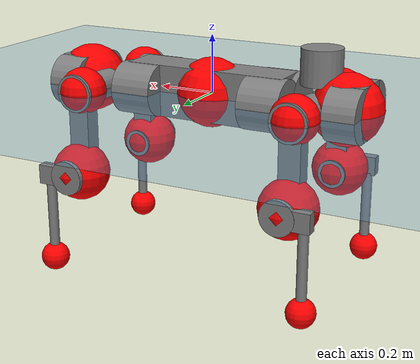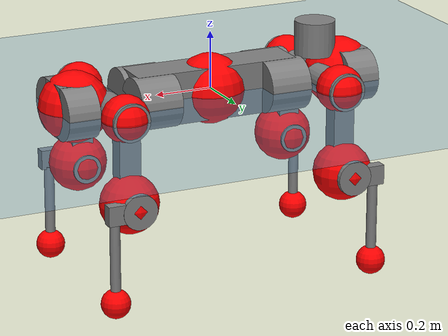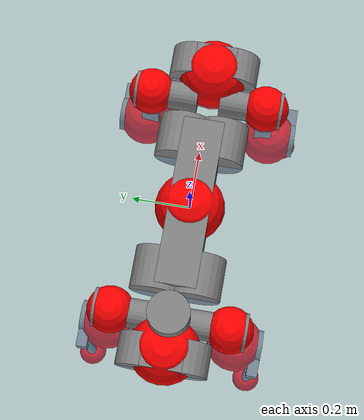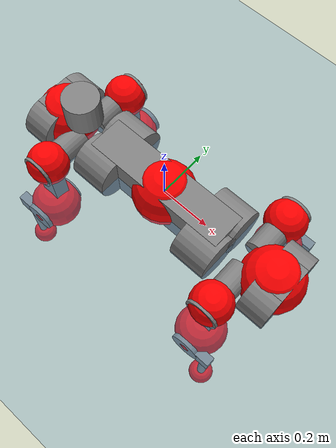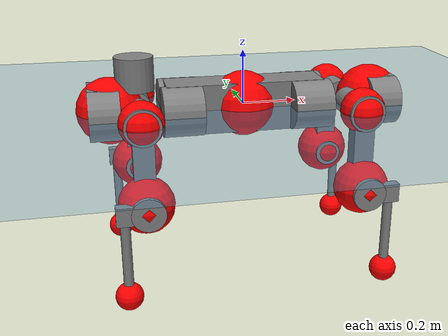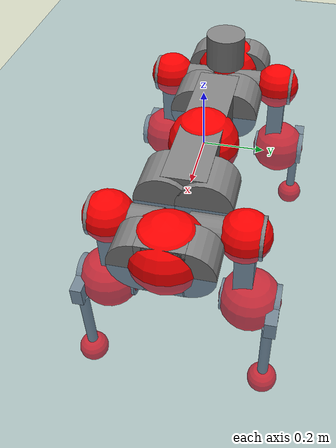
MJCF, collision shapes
<mujoco model="anymal_c">
  <compiler angle="radian" assetdir="assets" balanceinertia="true" inertiafromgeom="false"/>

  <option timestep="0.005" density="1.2" viscosity="2e-05"/>

  <size nkey="1"/>

  <visual>
    <quality shadowsize="8192"/>
    <map shadowclip="0.5"/>
  </visual>

  <default>
    <default class="/">
      <material specular="0" shininess="0.25"/>
      <geom contype="0" conaffinity="0" group="1" solref="-1000 -80"/>
      <site size="0.01 0.005 0.005" group="5"/>
      <general forcelimited="true" forcerange="-80 80" biastype="affine" gainprm="80" biasprm="0 -80 -2"/>
      <default class="anymal_c">
        <joint armature="0.01" damping="0.01" frictionloss="0.1"/>
        <default class="visual">
          <geom type="mesh" group="2"/>
          <default class="visual_zflip"/>
        </default>
        <default class="collision">
          <geom type="cylinder" group="3"/>
          <default class="foot">
            <geom size="0.03 0 0" type="sphere" condim="6" priority="1" friction="0.8 0.02 0.01" solimp="0.015 1 0.03"/>
          </default>
        </default>
      </default>
      <default class="reward_collision_sphere">
        <geom group="5" rgba="1 0 0 1"/>
      </default>
    </default>
  </default>

  <asset>
    <texture type="skybox" colorspace="auto" name="//unnamed_texture_0" builtin="gradient" rgb1="0.95 0.95 0.95" rgb2="0.95 0.95 0.95" width="100" height="600"/>
    <texture type="2d" colorspace="auto" name="texplane" builtin="checker" rgb1="0.345 0.575 0.748" rgb2="0.345 0.575 0.748" markrgb="1 1 1" width="512" height="512"/>
    <texture type="2d" colorspace="linear" name="base" file="base.png"/>
    <texture type="2d" colorspace="linear" name="top_shell" file="top_shell.png"/>
    <texture type="2d" colorspace="linear" name="bottom_shell" file="bottom_shell.png"/>
    <texture type="2d" colorspace="linear" name="remote" file="remote.png"/>
    <texture type="2d" colorspace="linear" name="hatch" file="hatch.png"/>
    <texture type="2d" colorspace="linear" name="handle" file="handle.png"/>
    <texture type="2d" colorspace="linear" name="face" file="face.png"/>
    <texture type="2d" colorspace="linear" name="battery" file="battery.png"/>
    <texture type="2d" colorspace="linear" name="lidar_cage" file="lidar_cage.png"/>
    <texture type="2d" colorspace="linear" name="depth_camera" file="depth_camera.png"/>
    <texture type="2d" colorspace="linear" name="wide_angle_camera" file="wide_angle_camera.png"/>
    <texture type="2d" colorspace="linear" name="lidar" file="lidar.png"/>
    <texture type="2d" colorspace="linear" name="drive" file="drive.png"/>
    <texture type="2d" colorspace="linear" name="hip_l" file="hip_l.png"/>
    <texture type="2d" colorspace="linear" name="shank_l" file="shank_l.png"/>
    <texture type="2d" colorspace="linear" name="foot" file="foot.png"/>
    <texture type="2d" colorspace="linear" name="thigh" file="thigh.png"/>
    <texture type="2d" colorspace="linear" name="shank_r" file="shank_r.png"/>
    <texture type="2d" colorspace="linear" name="hip_r" file="hip_r.png"/>
    <material name="MatPlane" class="/" texture="texplane" texuniform="true" texrepeat="2 2" specular="0.9" shininess="0.5"/>
    <material name="black_plastic" class="/" rgba="0.007 0.007 0.007 1"/>
    <material name="green" class="/" rgba="0.052 0.178 0.033 1"/>
    <material name="red" class="/" rgba="0.178 0.006 0.005 1"/>
    <material name="yellow" class="/" rgba="0.178 0.119 0.006 1"/>
    <material name="lwl" class="/" rgba="0.8 0.8 0.8 1"/>
    <material name="base" class="/" texture="base"/>
    <material name="top_shell" class="/" texture="top_shell"/>
    <material name="bottom_shell" class="/" texture="bottom_shell"/>
    <material name="hip_l" class="/" texture="hip_l"/>
    <material name="thigh" class="/" texture="thigh"/>
    <material name="shank_l" class="/" texture="shank_l"/>
    <material name="foot" class="/" texture="foot"/>
    <material name="hip_r" class="/" texture="hip_r"/>
    <material name="shank" class="/" texture="shank_r"/>
    <material name="hatch" class="/" texture="hatch"/>
    <material name="remote" class="/" texture="remote"/>
    <material name="handle" class="/" texture="handle"/>
    <material name="face" class="/" texture="face"/>
    <material name="depth_camera" class="/" texture="depth_camera"/>
    <material name="wide_angle_camera" class="/" texture="wide_angle_camera"/>
    <material name="battery" class="/" texture="battery"/>
    <material name="lidar_cage" class="/" texture="lidar_cage"/>
    <material name="lidar" class="/" texture="lidar"/>
    <material name="drive" class="/" texture="drive"/>
    <mesh name="base_0" class="/" file="base_0.obj"/>
    <mesh name="base_1" class="/" file="base_1.obj"/>
    <mesh name="base_2" class="/" file="base_2.obj"/>
    <mesh name="base_3" class="/" file="base_3.obj"/>
    <mesh name="base_4" class="/" file="base_4.obj"/>
    <mesh name="base_5" class="/" file="base_5.obj"/>
    <mesh name="top_shell" class="/" file="top_shell.obj"/>
    <mesh name="bottom_shell" class="/" file="bottom_shell.obj"/>
    <mesh name="remote" class="/" file="remote.obj"/>
    <mesh name="handle" class="/" file="handle.obj"/>
    <mesh name="face" class="/" file="face.obj"/>
    <mesh name="wide_angle_camera" class="/" file="wide_angle_camera.obj"/>
    <mesh name="depth_camera" class="/" file="depth_camera.obj"/>
    <mesh name="battery" class="/" file="battery.obj"/>
    <mesh name="lidar_cage" class="/" file="lidar_cage.obj"/>
    <mesh name="lidar" class="/" file="lidar.obj"/>
    <mesh name="drive" class="/" file="drive.obj"/>
    <mesh name="hip_l" class="/" file="hip_l.obj"/>
    <mesh name="thigh" class="/" file="thigh.obj"/>
    <mesh name="shank_l" class="/" file="shank_l.obj"/>
    <mesh name="foot" class="/" file="foot.obj"/>
    <mesh name="hip_r" class="/" file="hip_r.obj"/>
    <mesh name="hatch" class="/" file="hatch.obj"/>
    <mesh name="shank_r" class="/" file="shank_r.obj"/>
  </asset>

  <worldbody>
    <geom name="floor" class="/" size="100 100 0.125" type="plane" group="0" material="MatPlane"/>
    <light name="toplight_shadow" class="/" pos="0 0 5" dir="0.0990148 0.0990148 -0.990148" type="directional" ambient="0.04 0.04 0.04" diffuse="0.55 0.55 0.55" specular="0.12 0.12 0.12"/>
    <light name="toplight_fill" class="/" pos="0 0 5" dir="0.0990148 0.0990148 -0.990148" type="directional" castshadow="false" ambient="0.04 0.04 0.04" diffuse="0.3 0.3 0.3" specular="0.08 0.08 0.08"/>
    <body name="trunk" childclass="anymal_c" pos="0.0021052 -0.000317811 0.000862991" quat="1 0.000490193 -0.000438016 -0.000536674">
      <inertial pos="0.000574737 -0.000914856 0.0496501" quat="0.500049 0.50042 0.499543 0.499987" mass="18.8898" diaginertia="1.00948 0.421418 0.210956"/>
      <joint name="//unnamed_joint_0" type="free" armature="0" damping="0" frictionloss="0"/>
      <geom name="//unnamed_geom_1" class="visual" material="green" mesh="base_0"/>
      <geom name="//unnamed_geom_2" class="visual" material="yellow" mesh="base_1"/>
      <geom name="//unnamed_geom_3" class="visual" material="red" mesh="base_2"/>
      <geom name="//unnamed_geom_4" class="visual" material="black_plastic" mesh="base_3"/>
      <geom name="//unnamed_geom_5" class="visual" material="lwl" mesh="base_4"/>
      <geom name="//unnamed_geom_6" class="visual" material="base" mesh="base_5"/>
      <geom name="trunk_1" class="collision" size="0.291857 0.0704483 0.0905764" type="box"/>
      <geom name="trunk_2" class="collision" size="0.0905764 0.0729643" pos="0.238471 0.0647878 0" quat="0.707107 0 0.707107 0"/>
      <geom name="trunk_3" class="collision" size="0.0905764 0.0729643" pos="-0.238471 0.0647878 0" quat="0.707107 0 0.707107 0"/>
      <geom name="trunk_4" class="collision" size="0.0905764 0.0729643" pos="0.238471 -0.0647878 0" quat="0.707107 0 0.707107 0"/>
      <geom name="trunk_5" class="collision" size="0.0905764 0.0729643" pos="-0.238471 -0.0647878 0" quat="0.707107 0 0.707107 0"/>
      <geom name="//unnamed_geom_12" class="visual" material="top_shell" mesh="top_shell"/>
      <geom name="//unnamed_geom_13" class="visual" material="bottom_shell" mesh="bottom_shell"/>
      <geom name="//unnamed_geom_14" class="visual" material="remote" mesh="remote"/>
      <geom name="//unnamed_geom_15" class="visual" material="handle" mesh="handle"/>
      <geom name="//unnamed_geom_16" class="visual" pos="0.454466 0 0" quat="1 0 0 0" material="face" mesh="face"/>
      <geom name="trunk_6" class="collision" size="0.0553523 0.0704483 0.0905764" pos="0.514769 0 0" type="box"/>
      <geom name="//unnamed_geom_18" class="collision" size="0.0905764 0.0553523" pos="0.514769 0.0647878 0" quat="0.707107 0 0.707107 0"/>
      <geom name="//unnamed_geom_19" class="collision" size="0.0905764 0.0553523" pos="0.514769 -0.0647878 0" quat="0.707107 0 0.707107 0"/>
      <geom name="//unnamed_geom_20" class="visual" pos="0.506158 0 -0.0283661" quat="0.965926 0 0.258819 0" material="depth_camera" mesh="depth_camera"/>
      <geom name="//unnamed_geom_21" class="visual" pos="0.562463 0 0.0149289" material="wide_angle_camera" mesh="wide_angle_camera"/>
      <geom name="//unnamed_geom_22" class="visual_zflip" pos="-0.454466 0 0" quat="0 0 0 1" material="face" mesh="face"/>
      <geom name="trunk_7" class="collision" size="0.0553523 0.0704483 0.0905764" pos="-0.514769 0 0" quat="0 0 0 1" type="box"/>
      <geom name="//unnamed_geom_24" class="collision" size="0.0905764 0.0553523" pos="-0.514769 -0.0647878 0" quat="0 -0.707107 0 0.707107"/>
      <geom name="//unnamed_geom_25" class="collision" size="0.0905764 0.0553523" pos="-0.514769 0.0647878 0" quat="0 -0.707107 0 0.707107"/>
      <geom name="//unnamed_geom_26" class="visual" pos="-0.506158 0 -0.0283661" quat="0 -0.258819 0 0.965926" material="depth_camera" mesh="depth_camera"/>
      <geom name="//unnamed_geom_27" class="visual_zflip" pos="-0.562463 0 0.0149289" quat="0 0 0 1" material="wide_angle_camera" mesh="wide_angle_camera"/>
      <geom name="//unnamed_geom_28" class="visual" material="battery" mesh="battery"/>
      <geom name="//unnamed_geom_29" class="visual" pos="0 0.0685204 0.0297239" quat="0.683013 -0.183013 0.183013 0.683013" material="depth_camera" mesh="depth_camera"/>
      <geom name="//unnamed_geom_30" class="visual" pos="0 -0.0685204 0.0297239" quat="0.683013 0.183013 0.183013 -0.683013" material="depth_camera" mesh="depth_camera"/>
      <geom name="//unnamed_geom_31" class="visual" pos="-0.399097 0 0.0732982" quat="1 0 0 0" material="lidar_cage" mesh="lidar_cage"/>
      <geom name="trunk_8" class="collision" size="0.0704483 0.0603843" pos="-0.399097 0 0.133133"/>
      <geom name="//unnamed_geom_33" class="visual" pos="-0.399097 -6.7134e-05 0.141809" quat="0.707107 0 0 -0.707107" material="lidar" mesh="lidar"/>
      <geom name="//unnamed_geom_34" class="visual" pos="0.328816 0.0962817 -1.23706e-09" quat="0.258819 0.965926 0 0" material="drive" mesh="drive"/>
      <geom name="//unnamed_geom_35" class="visual" pos="0.328816 -0.0962817 1.23706e-09" quat="0.258819 -0.965926 0 0" material="drive" mesh="drive"/>
      <geom name="//unnamed_geom_36" class="visual" pos="-0.328816 0.0962817 1.23706e-09" quat="0 0 0.965926 -0.258819" material="drive" mesh="drive"/>
      <geom name="//unnamed_geom_37" class="visual" pos="-0.328816 -0.0962817 -1.23706e-09" quat="0 0 -0.965926 -0.258819" material="drive" mesh="drive"/>
      <geom name="//unnamed_geom_38" class="visual" pos="0.127185 0 0.0727995" quat="1 0 0 0" material="hatch" mesh="hatch"/>
      <geom name="//unnamed_geom_39" class="reward_collision_sphere" size="0.120769"/>
      <geom name="//unnamed_geom_40" class="reward_collision_sphere" size="0.120769" pos="0.493389 0 0"/>
      <geom name="//unnamed_geom_41" class="reward_collision_sphere" size="0.120769" pos="-0.493389 0 0"/>
      <site name="imu" pos="0.270616 0.00480754 0.0538566" size="0.010064"/>
      <camera name="track" pos="0 -1.85108 0" quat="0.707107 0.707107 0 0" mode="trackcom"/>
      <camera name="ego_camera" pos="0.493389 0 -0.0398902" quat="-0.5 -0.5 0.5 0.5"/>
      <body name="LF_HIP" pos="0.329116 0.0966843 -0.000101365" quat="0.259086 0.965854 -0.000146245 -0.00038146">
        <inertial pos="0.0618004 -0.0142173 -0.00862553" quat="-0.128081 0.708756 -0.13762 0.679942" mass="2.85731" diaginertia="0.00950139 0.00330225 0.00323943"/>
        <joint name="LF_HAA" pos="0 0 0" axis="0.999917 -0.000434977 0.0128636" range="-0.679465 0.479588" armature="0.00992786" damping="0.00617843" frictionloss="0.100754"/>
        <geom name="//unnamed_geom_42" class="visual" pos="0 -7.27708e-05 1.19525e-05" quat="0.258819 -0.965926 0 0" material="hip_l" mesh="hip_l"/>
        <geom name="//unnamed_geom_43" class="visual" pos="0.0656756 -0.0773555 -0.0451917" quat="0.183013 -0.683013 0.683013 0.183013" material="drive" mesh="drive"/>
        <geom name="//unnamed_geom_44" class="collision" size="0.0503202 0.0704483" pos="0.0656756 -0.0110693 -0.00688604" quat="-0.353553 -0.612372 0.612372 -0.353553"/>
        <body name="LF_THIGH" pos="0.0652472 -0.0670597 -0.042745" quat="0.18354 -0.683011 0.682839 0.183137">
          <inertial pos="0.0344221 0.000225982 -0.246623" quat="0.993173 -0.00514398 -0.0803526 0.0844085" mass="3.10299" diaginertia="0.0471809 0.0202763 0.00421644"/>
          <joint name="LF_HFE" pos="0 0 0" axis="0.999994 -0.0035682 -0.000444962" range="-3.16189 3.13924" armature="0.0104794" damping="0.00753871" frictionloss="0.105515"/>
          <geom name="//unnamed_geom_45" class="visual" pos="0.00339983 5.35734e-06 0" quat="0.707107 0 0 -0.707107" material="thigh" mesh="thigh"/>
          <geom name="//unnamed_geom_46" class="collision" size="0.0654163 0.0402562" pos="0.0438568 0 0" quat="0.5 0.5 -0.5 -0.5"/>
          <geom name="//unnamed_geom_47" class="collision" size="0.0377402 0.0301921 0.142219" pos="0.0328926 0 -0.140926" quat="0.707107 0 0 -0.707107" type="box"/>
          <geom name="//unnamed_geom_48" class="visual" pos="0.109971 0 -0.284217" quat="1 0 0 0" material="drive" mesh="drive"/>
          <geom name="//unnamed_geom_49" class="collision" size="0.0503202 0.0704483" pos="0.0332215 0 -0.284217" quat="0.707107 0 0.707107 0"/>
          <geom name="//unnamed_geom_50" class="reward_collision_sphere" size="0.0805124" pos="0.0274105 0 0"/>
          <body name="LF_SHANK" pos="0.110153 -0.00200407 -0.284109" quat="1 1.71661e-05 -2.16852e-06 2.45357e-06">
            <inertial pos="0.00500119 -0.056802 -0.0803749" quat="0.993368 -0.112595 0.00194208 -0.0232053" mass="0.599677" diaginertia="0.016618 0.00643733 0.00112265"/>
            <joint name="LF_KFE" pos="0 0 0" axis="0.999985 0.00128231 0.00531759" range="-3.17301 3.14139" armature="0.00974587" damping="0.00237964" frictionloss="0.0972164"/>
            <geom name="//unnamed_geom_51" class="visual" pos="0.00110861 0.00591117 0" quat="0.707107 0 0 -0.707107" material="shank_l" mesh="shank_l"/>
            <geom name="LF_kfe_act" class="collision" size="0.0603843 0.0201281" pos="0.0219284 0 0" quat="0.5 0.5 -0.5 -0.5"/>
            <geom name="//unnamed_geom_53" class="collision" size="0.0578673 0.0339662 0.0191217" pos="0.0219284 -0.0532177 0" quat="0.5 0.5 -0.5 -0.5" type="box"/>
            <geom name="//unnamed_geom_54" class="visual" pos="0.014308 -0.0794964 -0.337042" quat="0.382683 0 0 -0.92388" material="foot" mesh="foot"/>
            <geom name="LF_calf" class="collision" size="0.0176121 0.142157" pos="0.0143083 -0.0814013 -0.168521" quat="0.707107 0 0 -0.707107"/>
            <geom name="LF_foot" class="foot" size="0.0331442" pos="0.0143083 -0.0814013 -0.314604" quat="0.707107 0 0 -0.707107"/>
            <geom name="//unnamed_geom_57" class="reward_collision_sphere" size="0.10064" pos="-0.054821 0 0"/>
            <geom name="//unnamed_geom_58" class="reward_collision_sphere" size="0.0503202" pos="0.0143083 -0.0814013 -0.314604"/>
            <site name="LF_foot" class="foot" pos="0.0143083 -0.0814013 -0.314604" quat="0.707107 0 0 -0.707107" size="0.010064"/>
          </body>
        </body>
      </body>
      <body name="RF_HIP" pos="0.329548 -0.0967263 -0.00145817" quat="0.258763 -0.965941 -0.000244383 -0.000412896">
        <inertial pos="0.0615806 0.0133012 -0.00845993" quat="0.138621 0.675732 0.128893 0.71243" mass="2.81839" diaginertia="0.00927591 0.00336395 0.00326828"/>
        <joint name="RF_HAA" pos="0 0 0" axis="0.999988 0.00399694 -0.00294872" range="-0.511322 0.721378" armature="0.00970301" damping="0.0126145" frictionloss="0.0947589"/>
        <geom name="//unnamed_geom_59" class="visual" pos="0 7.27702e-05 1.19525e-05" quat="0.258819 0.965926 0 0" material="hip_r" mesh="hip_r"/>
        <geom name="//unnamed_geom_60" class="visual" pos="0.0656756 0.0773555 -0.0451917" quat="0.183013 0.683013 0.683013 -0.183013" material="drive" mesh="drive"/>
        <geom name="//unnamed_geom_61" class="collision" size="0.0503202 0.0704483" pos="0.0656756 0.0110693 -0.00688604" quat="-0.353553 0.612372 0.612372 0.353553"/>
        <body name="RF_THIGH" pos="0.0661027 0.0648767 -0.0429613" quat="0.182973 0.68294 0.683101 -0.182993">
          <inertial pos="0.0333535 -0.000718549 -0.245305" quat="0.992769 -0.00505492 -0.0808255 0.0886133" mass="3.15353" diaginertia="0.0481237 0.02074 0.00422466"/>
          <joint name="RF_HFE" pos="0 0 0" axis="1 -0.000123279 0.000348841" range="-3.15097 3.15801" armature="0.0100007" damping="0.0109897" frictionloss="0.0959089"/>
          <geom name="//unnamed_geom_62" class="visual" pos="0.00339983 5.35734e-06 0" quat="0.707107 0 0 -0.707107" material="thigh" mesh="thigh"/>
          <geom name="//unnamed_geom_63" class="collision" size="0.0654163 0.0402562" pos="0.0438568 0 0" quat="0.5 0.5 0.5 0.5"/>
          <geom name="//unnamed_geom_64" class="collision" size="0.0377402 0.0301921 0.142219" pos="0.0328926 0 -0.140926" quat="0.707107 0 0 0.707107" type="box"/>
          <geom name="//unnamed_geom_65" class="visual" pos="0.109971 0 -0.284217" quat="1 0 0 0" material="drive" mesh="drive"/>
          <geom name="//unnamed_geom_66" class="collision" size="0.0503202 0.0704483" pos="0.0332215 0 -0.284217" quat="0.707107 0 0.707107 0"/>
          <geom name="//unnamed_geom_67" class="reward_collision_sphere" size="0.0805124" pos="0.0274105 0 0"/>
          <body name="RF_SHANK" pos="0.109873 -0.00060805 -0.283181" quat="1 -6.36944e-05 -2.63387e-05 -6.1307e-05">
            <inertial pos="0.0060126 0.0569433 -0.0805367" quat="0.993137 0.112928 -0.00618317 0.0297876" mass="0.601086" diaginertia="0.0161509 0.00628925 0.00110034"/>
            <joint name="RF_KFE" pos="0 0 0" axis="0.999987 0.00406749 -0.00307799" range="-3.12363 3.14141" armature="0.0105232" damping="0.0114741" frictionloss="0.105655"/>
            <geom name="//unnamed_geom_68" class="visual" pos="0.0011086 -0.00591116 0" quat="0.707107 0 0 0.707107" material="shank" mesh="shank_r"/>
            <geom name="RF_kfe_act" class="collision" size="0.0603843 0.0201281" pos="0.0219284 0 0" quat="0.5 0.5 0.5 0.5"/>
            <geom name="//unnamed_geom_70" class="collision" size="0.0578673 0.0339662 0.0191217" pos="0.0219284 0.0532177 0" quat="0.5 0.5 0.5 0.5" type="box"/>
            <geom name="//unnamed_geom_71" class="visual" pos="0.0143086 0.0794964 -0.337042" quat="0.382683 0 0 0.92388" material="foot" mesh="foot"/>
            <geom name="RF_calf" class="collision" size="0.0176121 0.142157" pos="0.0143083 0.0814013 -0.168521" quat="0.707107 0 0 0.707107"/>
            <geom name="RF_foot" class="foot" size="0.0292416" pos="0.0143083 0.0814013 -0.314604" quat="0.707107 0 0 0.707107"/>
            <geom name="//unnamed_geom_74" class="reward_collision_sphere" size="0.10064" pos="-0.054821 0 0"/>
            <geom name="//unnamed_geom_75" class="reward_collision_sphere" size="0.0503202" pos="0.0143083 0.0814013 -0.314604"/>
            <site name="RF_foot" class="foot" pos="0.0143083 0.0814013 -0.314604" quat="0.707107 0 0 0.707107" size="0.010064"/>
          </body>
        </body>
      </body>
      <body name="LH_HIP" pos="-0.328381 0.0968095 0.00049781" quat="0.000319246 -7.89117e-05 0.965941 -0.258762">
        <inertial pos="0.0612627 0.0157382 -0.00884342" quat="0.130683 0.680976 0.137317 0.707346" mass="2.89152" diaginertia="0.00932005 0.00334805 0.00330288"/>
        <joint name="LH_HAA" pos="0 0 0" axis="0.999998 0.000872765 -0.00202363" range="-0.501792 0.730629" armature="0.00959216" damping="0.0141602" frictionloss="0.108036"/>
        <geom name="//unnamed_geom_76" class="visual" pos="0 7.27702e-05 1.19525e-05" quat="-0.258819 -0.965926 0 0" material="hip_r" mesh="hip_r"/>
        <geom name="//unnamed_geom_77" class="visual" pos="0.0656756 0.0773555 -0.0451917" quat="0.183013 0.683013 0.683013 -0.183013" material="drive" mesh="drive"/>
        <geom name="//unnamed_geom_78" class="collision" size="0.0503202 0.0704483" pos="0.0656756 0.0110693 -0.00688604" quat="-0.353553 0.612372 0.612372 0.353553"/>
        <body name="LH_THIGH" pos="0.0650318 0.0657044 -0.0413187" quat="0.183046 0.682906 0.68304 -0.183276">
          <inertial pos="0.0339462 7.28173e-05 -0.244632" quat="0.993005 -0.00339406 -0.082425 0.0844777" mass="3.17754" diaginertia="0.0475068 0.0202006 0.00409311"/>
          <joint name="LH_HFE" pos="0 0 0" axis="0.999996 -0.00127589 0.00248635" range="-3.13998 3.14738" armature="0.0103255" damping="0.0112641" frictionloss="0.10045"/>
          <geom name="//unnamed_geom_79" class="visual" pos="0.00339983 5.35734e-06 0" quat="0.707107 0 0 -0.707107" material="thigh" mesh="thigh"/>
          <geom name="//unnamed_geom_80" class="collision" size="0.0654163 0.0402562" pos="0.0438568 0 0" quat="0.5 0.5 -0.5 -0.5"/>
          <geom name="//unnamed_geom_81" class="collision" size="0.0377402 0.0301921 0.142219" pos="0.0328926 0 -0.140926" quat="0.707107 0 0 -0.707107" type="box"/>
          <geom name="//unnamed_geom_82" class="visual" pos="0.109971 0 -0.284217" quat="1 0 0 0" material="drive" mesh="drive"/>
          <geom name="//unnamed_geom_83" class="collision" size="0.0503202 0.0704483" pos="0.0332215 0 -0.284217" quat="0.707107 0 0.707107 0"/>
          <geom name="//unnamed_geom_84" class="reward_collision_sphere" size="0.0805124" pos="0.0274105 0 0"/>
          <body name="LH_SHANK" pos="0.110266 -0.000497691 -0.285718" quat="1 8.74873e-06 1.6218e-05 1.59421e-06">
            <inertial pos="0.00698254 0.0585736 -0.0800731" quat="0.993152 0.11398 -0.00373792 0.0253768" mass="0.593088" diaginertia="0.0160321 0.00621198 0.00106333"/>
            <joint name="LH_KFE" pos="0 0 0" axis="0.999999 0.000663148 -0.00100568" range="-3.14179 3.12226" armature="0.0098264" damping="0.00837235" frictionloss="0.110321"/>
            <geom name="//unnamed_geom_85" class="visual" pos="0.0011086 -0.00591116 0" quat="-0.707107 0 0 -0.707107" material="shank" mesh="shank_r"/>
            <geom name="LH_kfe_act" class="collision" size="0.0603843 0.0201281" pos="0.0219284 0 0" quat="0.5 0.5 -0.5 -0.5"/>
            <geom name="//unnamed_geom_87" class="collision" size="0.0578673 0.0339662 0.0191217" pos="0.0219284 0.0532177 0" quat="0.5 0.5 -0.5 -0.5" type="box"/>
            <geom name="//unnamed_geom_88" class="visual" pos="0.0143086 0.0794964 -0.337042" quat="-0.382683 0 0 -0.92388" material="foot" mesh="foot"/>
            <geom name="LH_calf" class="collision" size="0.0176121 0.142157" pos="0.0143083 0.0814013 -0.168521" quat="0.707107 0 0 -0.707107"/>
            <geom name="LH_foot" class="foot" size="0.0315497" pos="0.0143083 0.0814013 -0.314604" quat="0.707107 0 0 -0.707107"/>
            <geom name="//unnamed_geom_91" class="reward_collision_sphere" size="0.10064" pos="-0.054821 0 0"/>
            <geom name="//unnamed_geom_92" class="reward_collision_sphere" size="0.0503202" pos="0.0143083 0.0814013 -0.314604"/>
            <site name="LH_foot" class="foot" pos="0.0143083 0.0814013 -0.314604" quat="0.707107 0 0 -0.707107" size="0.010064"/>
          </body>
        </body>
      </body>
      <body name="RH_HIP" pos="-0.329594 -0.0960538 -0.000363897" quat="0.000705801 0.000576664 -0.966029 -0.258433">
        <inertial pos="0.0640783 -0.0137961 -0.0104455" quat="-0.127218 0.709675 -0.134518 0.679766" mass="2.84023" diaginertia="0.00932162 0.00335154 0.00322837"/>
        <joint name="RH_HAA" pos="0 0 0" axis="0.999933 -0.00241153 0.0112957" range="-0.742208 0.497826" armature="0.0104858" damping="0.00865027" frictionloss="0.101019"/>
        <geom name="//unnamed_geom_93" class="visual" pos="0 -7.27708e-05 1.19525e-05" quat="-0.258819 0.965926 0 0" material="hip_l" mesh="hip_l"/>
        <geom name="//unnamed_geom_94" class="visual" pos="0.0656756 -0.0773555 -0.0451917" quat="-0.183013 0.683013 -0.683013 -0.183013" material="drive" mesh="drive"/>
        <geom name="//unnamed_geom_95" class="collision" size="0.0503202 0.0704483" pos="0.0656756 -0.0110693 -0.00688604" quat="0.353553 0.612372 -0.612372 0.353553"/>
        <body name="RH_THIGH" pos="0.065975 -0.0669882 -0.0439114" quat="-0.183084 0.683091 -0.68289 -0.183106">
          <inertial pos="0.0334338 0.000205446 -0.244763" quat="0.993122 -0.00535784 -0.0813192 0.0840622" mass="3.0825" diaginertia="0.0477792 0.020297 0.00413775"/>
          <joint name="RH_HFE" pos="0 0 0" axis="1 -0.00063644 -0.000685449" range="-3.14122 3.17069" armature="0.00979898" damping="0.00698631" frictionloss="0.100856"/>
          <geom name="//unnamed_geom_96" class="visual" pos="0.00339983 5.35734e-06 0" quat="0.707107 0 0 -0.707107" material="thigh" mesh="thigh"/>
          <geom name="//unnamed_geom_97" class="collision" size="0.0654163 0.0402562" pos="0.0438568 0 0" quat="0.5 0.5 0.5 0.5"/>
          <geom name="//unnamed_geom_98" class="collision" size="0.0377402 0.0301921 0.142219" pos="0.0328926 0 -0.140926" quat="0.707107 0 0 0.707107" type="box"/>
          <geom name="//unnamed_geom_99" class="visual" pos="0.109971 0 -0.284217" quat="1 0 0 0" material="drive" mesh="drive"/>
          <geom name="//unnamed_geom_100" class="collision" size="0.0503202 0.0704483" pos="0.0332215 0 -0.284217" quat="0.707107 0 0.707107 0"/>
          <geom name="//unnamed_geom_101" class="reward_collision_sphere" size="0.0805124" pos="0.0274105 0 0"/>
          <body name="RH_SHANK" pos="0.109411 0.000667595 -0.284988" quat="1 4.18127e-05 3.09817e-05 0.00014712">
            <inertial pos="0.0056809 -0.0561261 -0.0801643" quat="0.992964 -0.11626 -0.000681747 -0.0225041" mass="0.596944" diaginertia="0.0158949 0.00624621 0.00111685"/>
            <joint name="RH_KFE" pos="0 0 0" axis="0.999936 0.0104565 0.00432342" stiffness="0.000605948" range="-3.11948 3.13757" armature="0.0103988" damping="0.0149346" frictionloss="0.10377"/>
            <geom name="//unnamed_geom_102" class="visual" pos="0.00110861 0.00591117 0" quat="0.707107 0 0 -0.707107" material="shank_l" mesh="shank_l"/>
            <geom name="RH_kfe_act" class="collision" size="0.0603843 0.0201281" pos="0.0219284 0 0" quat="0.5 0.5 0.5 0.5"/>
            <geom name="//unnamed_geom_104" class="collision" size="0.0578673 0.0339662 0.0191217" pos="0.0219284 -0.0532177 0" quat="0.5 0.5 0.5 0.5" type="box"/>
            <geom name="//unnamed_geom_105" class="visual" pos="0.014308 -0.0794964 -0.337042" quat="0.382683 0 0 -0.92388" material="foot" mesh="foot"/>
            <geom name="RH_calf" class="collision" size="0.0176121 0.142157" pos="0.0143083 -0.0814013 -0.168521" quat="0.707107 0 0 0.707107"/>
            <geom name="RH_foot" class="foot" size="0.0273263" pos="0.0143083 -0.0814013 -0.314604" quat="0.707107 0 0 0.707107"/>
            <geom name="//unnamed_geom_108" class="reward_collision_sphere" size="0.10064" pos="-0.054821 0 0"/>
            <geom name="//unnamed_geom_109" class="reward_collision_sphere" size="0.0503202" pos="0.0143083 -0.0814013 -0.314604"/>
            <site name="RH_foot" class="foot" pos="0.0143083 -0.0814013 -0.314604" quat="0.707107 0 0 0.707107" size="0.010064"/>
          </body>
        </body>
      </body>
    </body>
  </worldbody>

  <contact>
    <pair class="/" geom1="floor" geom2="LF_foot" name="//unnamed_contact_0"/>
    <pair class="/" geom1="floor" geom2="RF_foot" name="//unnamed_contact_1"/>
    <pair class="/" geom1="floor" geom2="LH_foot" name="//unnamed_contact_2"/>
    <pair class="/" geom1="floor" geom2="RH_foot" name="//unnamed_contact_3"/>
  </contact>

  <actuator>
    <general name="LF_HAA" class="/" joint="LF_HAA" forcerange="-81.2416 81.2416" gainprm="79.286" biasprm="0 -79.286 -1.93827"/>
    <general name="LF_HFE" class="/" joint="LF_HFE" forcerange="-82.6393 82.6393" gainprm="79.286" biasprm="0 -79.286 -1.93827"/>
    <general name="LF_KFE" class="/" joint="LF_KFE" forcerange="-79.5633 79.5633" gainprm="79.286" biasprm="0 -79.286 -1.93827"/>
    <general name="RF_HAA" class="/" joint="RF_HAA" forcerange="-81.8842 81.8842" gainprm="79.286" biasprm="0 -79.286 -1.93827"/>
    <general name="RF_HFE" class="/" joint="RF_HFE" forcerange="-80.4417 80.4417" gainprm="79.286" biasprm="0 -79.286 -1.93827"/>
    <general name="RF_KFE" class="/" joint="RF_KFE" forcerange="-80.0894 80.0894" gainprm="79.286" biasprm="0 -79.286 -1.93827"/>
    <general name="LH_HAA" class="/" joint="LH_HAA" forcerange="-86.877 86.877" gainprm="79.286" biasprm="0 -79.286 -1.93827"/>
    <general name="LH_HFE" class="/" joint="LH_HFE" forcerange="-83.5712 83.5712" gainprm="79.286" biasprm="0 -79.286 -1.93827"/>
    <general name="LH_KFE" class="/" joint="LH_KFE" forcerange="-76.3504 76.3504" gainprm="79.286" biasprm="0 -79.286 -1.93827"/>
    <general name="RH_HAA" class="/" joint="RH_HAA" forcerange="-81.3202 81.3202" gainprm="79.286" biasprm="0 -79.286 -1.93827"/>
    <general name="RH_HFE" class="/" joint="RH_HFE" forcerange="-86.3226 86.3226" gainprm="79.286" biasprm="0 -79.286 -1.93827"/>
    <general name="RH_KFE" class="/" joint="RH_KFE" forcerange="-81.9555 81.9555" gainprm="79.286" biasprm="0 -79.286 -1.93827"/>
  </actuator>

  <sensor>
    <gyro site="imu" name="imu_angular_velocity"/>
    <velocimeter site="imu" name="imu_linear_velocity"/>
    <framelinvel objtype="site" objname="LF_foot" name="LF_foot_global_linear_velocity"/>
    <framelinvel objtype="site" objname="RF_foot" name="RF_foot_global_linear_velocity"/>
    <framelinvel objtype="site" objname="LH_foot" name="LH_foot_global_linear_velocity"/>
    <framelinvel objtype="site" objname="RH_foot" name="RH_foot_global_linear_velocity"/>
  </sensor>

  <keyframe>
    <key name="home" qpos="0 0 0.55 1 0 0 0 0 0.4 -0.8 0 -0.4 0.8 0 -0.4 0.8 0 0.4 -0.8"/>
  </keyframe>
</mujoco>
